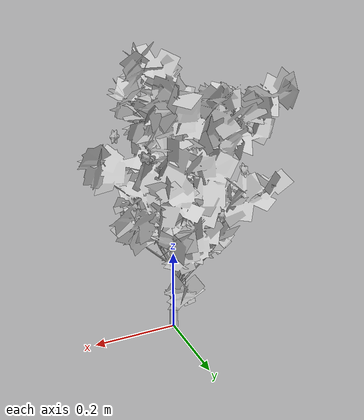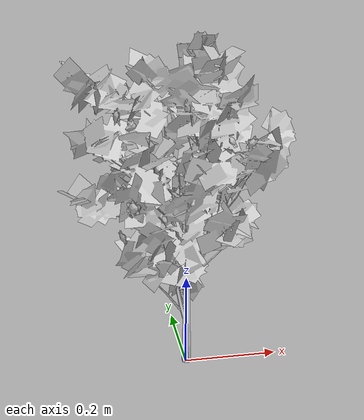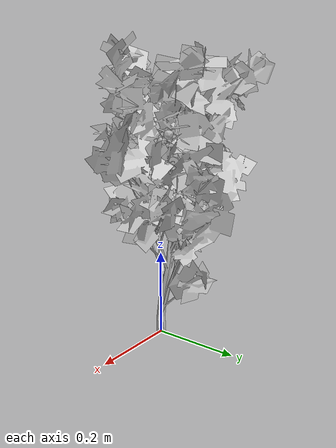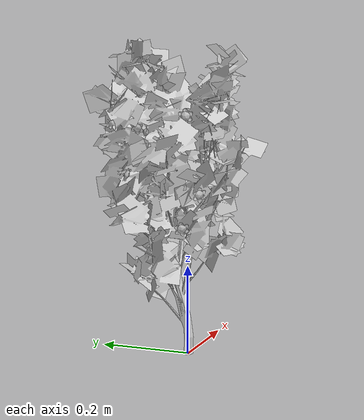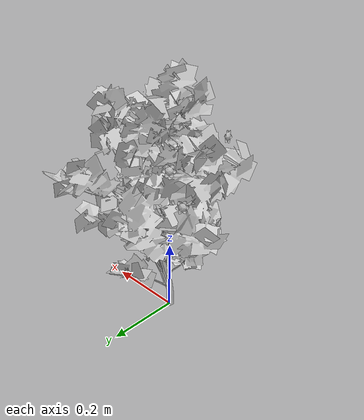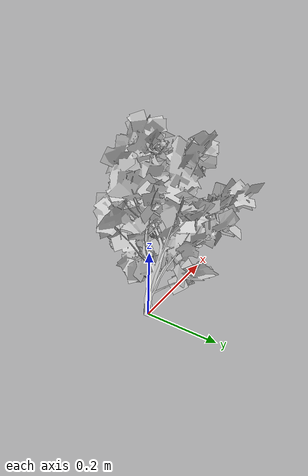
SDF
<?xml version="1.0" ?>
<sdf version="1.6">
  <model name="tree-flowers">
    <!--Skew-Seed:1404525270-->
    <static>true</static>
    <link name="link"/>
    <include>
      <uri>model://tree-mesh</uri>
      <pose>0 0 0 0 0 0</pose>
    </include>
    <joint name="tree_joint" type="fixed">
      <child>tree-mesh::link</child>
      <parent>link</parent>
    </joint>
    <include>
      <name>bramble_0</name>
      <uri>model://bramble</uri>
      <pose> 0.11924399925477822 -0.03754142168969157 0.5040576350859716 0.927396814843797 1.9044573842598458 0.0</pose>
    </include>
    <joint name="flower_joint_0" type="fixed">
      <child>bramble_0::flower_link</child>
      <parent>link</parent>
    </joint>
    <include>
      <name>bramble_1</name>
      <uri>model://bramble</uri>
      <pose> -0.13121252973257364 -0.03481424031357605 0.3213986129264991 -3.532751371041409 1.3162475453641744 0.0</pose>
    </include>
    <joint name="flower_joint_1" type="fixed">
      <child>bramble_1::flower_link</child>
      <parent>link</parent>
    </joint>
    <include>
      <name>bramble_2</name>
      <uri>model://bramble</uri>
      <pose> -0.07842475273004816 0.0871922961926285 0.32699607563414623 -1.927657123913742 1.4920211878372267 0.0</pose>
    </include>
    <joint name="flower_joint_2" type="fixed">
      <child>bramble_2::flower_link</child>
      <parent>link</parent>
    </joint>
    <include>
      <name>bramble_3</name>
      <uri>model://bramble</uri>
      <pose> -0.10881991442930661 0.07264426593673125 0.5732802514661574 -2.608159139650133 1.7798333944786981 0.0</pose>
    </include>
    <joint name="flower_joint_3" type="fixed">
      <child>bramble_3::flower_link</child>
      <parent>link</parent>
    </joint>
    <include>
      <name>bramble_4</name>
      <uri>model://bramble</uri>
      <pose> -0.11468937881315633 -0.06698767949737192 0.39462502660026977 -4.067979612298497 1.675241775729792 0.0</pose>
    </include>
    <joint name="flower_joint_4" type="fixed">
      <child>bramble_4::flower_link</child>
      <parent>link</parent>
    </joint>
    <include>
      <name>bramble_5</name>
      <uri>model://bramble</uri>
      <pose> -0.06941228765680788 0.11340208979222491 0.5950142895487205 -2.778924062664024 1.8093361946450135 0.0</pose>
    </include>
    <joint name="flower_joint_5" type="fixed">
      <child>bramble_5::flower_link</child>
      <parent>link</parent>
    </joint>
    <include>
      <name>bramble_6</name>
      <uri>model://bramble</uri>
      <pose> -0.12539423613496498 0.06901798348104606 0.5369100088492257 -3.0379270720420295 1.3059992924249335 0.0</pose>
    </include>
    <joint name="flower_joint_6" type="fixed">
      <child>bramble_6::flower_link</child>
      <parent>link</parent>
    </joint>
    <include>
      <name>bramble_7</name>
      <uri>model://bramble</uri>
      <pose> -0.09858558015129312 0.05605145988100134 0.5195092613435147 -2.003065336912453 1.8225346682369317 0.0</pose>
    </include>
    <joint name="flower_joint_7" type="fixed">
      <child>bramble_7::flower_link</child>
      <parent>link</parent>
    </joint>
    <include>
      <name>bramble_8</name>
      <uri>model://bramble</uri>
      <pose> -0.14364080367270574 0.10778890924795287 0.562713704962658 -3.2141618546252513 2.3149043179745945 0.0</pose>
    </include>
    <joint name="flower_joint_8" type="fixed">
      <child>bramble_8::flower_link</child>
      <parent>link</parent>
    </joint>
    <include>
      <name>bramble_9</name>
      <uri>model://bramble</uri>
      <pose> 0.06245390282980223 0.07069147665932982 0.4312407554797709 -0.8573036066112394 1.920985387014914 0.0</pose>
    </include>
    <joint name="flower_joint_9" type="fixed">
      <child>bramble_9::flower_link</child>
      <parent>link</parent>
    </joint>
    <include>
      <name>bramble_10</name>
      <uri>model://bramble</uri>
      <pose> -0.12142141275164206 0.12741911574944212 0.5398387903268325 -2.7533528552625817 2.2050618153454753 0.0</pose>
    </include>
    <joint name="flower_joint_10" type="fixed">
      <child>bramble_10::flower_link</child>
      <parent>link</parent>
    </joint>
    <include>
      <name>bramble_11</name>
      <uri>model://bramble</uri>
      <pose> 0.0798188272033879 0.06841673741878801 0.48801533560138655 -0.657426582898446 1.7914191591594553 0.0</pose>
    </include>
    <joint name="flower_joint_11" type="fixed">
      <child>bramble_11::flower_link</child>
      <parent>link</parent>
    </joint>
    <include>
      <name>bramble_12</name>
      <uri>model://bramble</uri>
      <pose> 0.1067728335154973 0.10656180978440102 0.5132149716294091 -0.7708441664584206 1.8667743728778567 0.0</pose>
    </include>
    <joint name="flower_joint_12" type="fixed">
      <child>bramble_12::flower_link</child>
      <parent>link</parent>
    </joint>
    <include>
      <name>bramble_13</name>
      <uri>model://bramble</uri>
      <pose> -0.1389790799777646 -0.046341718910400176 0.5711973128676029 -3.357310454349474 1.7915433577090045 0.0</pose>
    </include>
    <joint name="flower_joint_13" type="fixed">
      <child>bramble_13::flower_link</child>
      <parent>link</parent>
    </joint>
    <include>
      <name>bramble_14</name>
      <uri>model://bramble</uri>
      <pose> -0.12995471788832783 0.08907385693517288 0.42724634494734515 -2.3752818387880366 2.3505436089137204 0.0</pose>
    </include>
    <joint name="flower_joint_14" type="fixed">
      <child>bramble_14::flower_link</child>
      <parent>link</parent>
    </joint>
    <include>
      <name>bramble_15</name>
      <uri>model://bramble</uri>
      <pose> 0.07971099955678054 -0.03541325709304788 0.5067855320265968 0.2871496309609539 0.8727171883825514 0.0</pose>
    </include>
    <joint name="flower_joint_15" type="fixed">
      <child>bramble_15::flower_link</child>
      <parent>link</parent>
    </joint>
    <include>
      <name>bramble_16</name>
      <uri>model://bramble</uri>
      <pose> -0.07303735581751314 -0.03999358031719754 0.4049591522981695 -3.6636953685898734 1.4432533512543153 0.0</pose>
    </include>
    <joint name="flower_joint_16" type="fixed">
      <child>bramble_16::flower_link</child>
      <parent>link</parent>
    </joint>
    <include>
      <name>bramble_17</name>
      <uri>model://bramble</uri>
      <pose> 0.052029962802783866 0.09261789562400327 0.36054009723443003 -0.5483864072937346 0.9881241704038832 0.0</pose>
    </include>
    <joint name="flower_joint_17" type="fixed">
      <child>bramble_17::flower_link</child>
      <parent>link</parent>
    </joint>
    <include>
      <name>bramble_18</name>
      <uri>model://bramble</uri>
      <pose> -0.05169449131373924 -0.03795600858893874 0.4130441835038461 -3.2088220169431083 1.8393790410646729 0.0</pose>
    </include>
    <joint name="flower_joint_18" type="fixed">
      <child>bramble_18::flower_link</child>
      <parent>link</parent>
    </joint>
  </model>
</sdf>

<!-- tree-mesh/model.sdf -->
<sdf version="1.6">
  <model name="tree-mesh">
    <static>true</static>
    <link name="link">

      <collision name="collision">
        <geometry>
          <mesh>
            <uri>model://tree-mesh/meshes/new_tree.dae</uri>
            <scale>0.0625 0.0625 0.0625</scale>
          </mesh>
        </geometry>
      </collision>

      <!-- simplified collision for sake of speed since leaves shouldn't be blocking anyway -->

      <visual name="leaves">
        <geometry>
          <mesh>
            <uri>model://tree-mesh/meshes/leaves.dae</uri>
            <scale>0.0325 0.0325 0.0325</scale>
          </mesh>
        </geometry>
        <material>
          <script>
            <uri>model://tree-mesh/materials/scripts/</uri>
            <uri>model://tree-mesh/materials/textures/</uri>
            <name>NewTree/Branch</name>
          </script>
        </material>
      </visual>
      <visual name="bark">
        <geometry>
          <mesh>
            <uri>model://tree-mesh/meshes/bark.dae</uri>
            <scale>0.0325 0.0325 0.0325</scale>
          </mesh>
        </geometry>
        <material>
          <script>
            <uri>model://tree-mesh/materials/scripts/</uri>
            <uri>model://tree-mesh/materials/textures/</uri>
            <name>NewTree/Bark</name>
          </script>
        </material>
      </visual>
    </link>
  </model>
</sdf>

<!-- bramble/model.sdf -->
<sdf version="1.6">
  <model name="bramble">
    <static>true</static>
    <link name="flower_link">
      <collision name="body_collision">
        <geometry>
          <mesh>
            <uri>model://bramble/meshes/bramble.dae</uri>
            <scale>0.2 0.2 0.2</scale>
          </mesh>
        </geometry>
      </collision>
      <visual name="petals">
        <geometry>
          <mesh>
            <uri>model://bramble/meshes/bramble.dae</uri>
            <scale>0.2 0.2 0.2</scale>
            <submesh>
              <name>petal</name>
            </submesh>
          </mesh>
        </geometry>
        <material>
          <script>
            <uri>model://bramble/materials/scripts/</uri>
            <uri>model://bramble/materials/textures/</uri>
            <name>Bramble/Petal</name>
          </script>
        </material>
      </visual>
      <visual name="carpel">
        <geometry>
          <mesh>
            <uri>model://bramble/meshes/bramble.dae</uri>
            <scale>0.2 0.2 0.2</scale>
            <submesh>
              <name>carpel</name>
            </submesh>
          </mesh>
        </geometry>
        <material>
          <script>
            <uri>model://bramble/materials/scripts/</uri>
            <uri>model://bramble/materials/textures/</uri>
            <name>Bramble/Carpel</name>
          </script>
        </material>
      </visual>
      <visual name="stamen">
        <geometry>
          <mesh>
            <uri>model://bramble/meshes/bramble.dae</uri>
            <scale>0.2 0.2 0.2</scale>
            <submesh>
              <name>stamen</name>
            </submesh>
          </mesh>
        </geometry>
        <material>
          <script>
            <uri>model://bramble/materials/scripts/</uri>
            <uri>model://bramble/materials/textures/</uri>
            <name>Bramble/Stamen</name>
          </script>
        </material>
      </visual>
    </link>
  </model>
</sdf>
